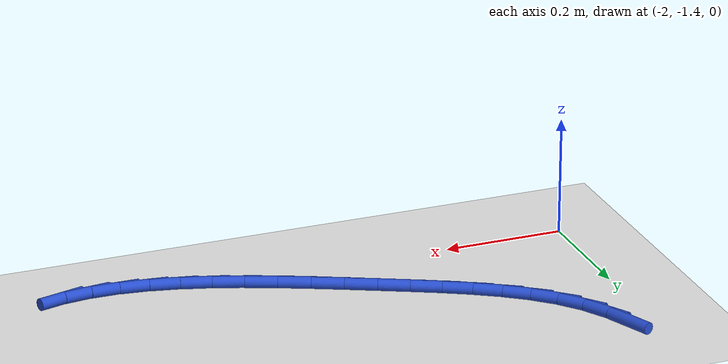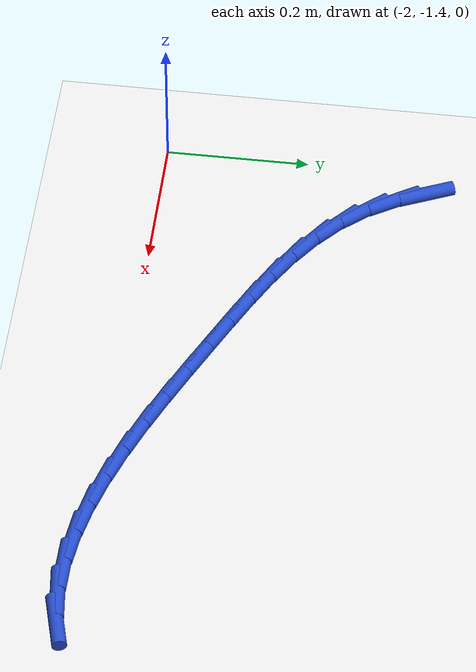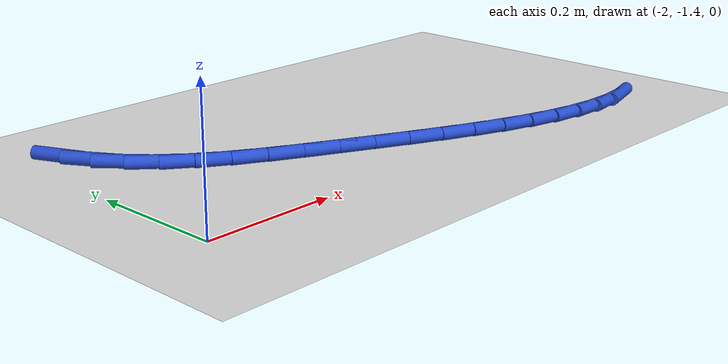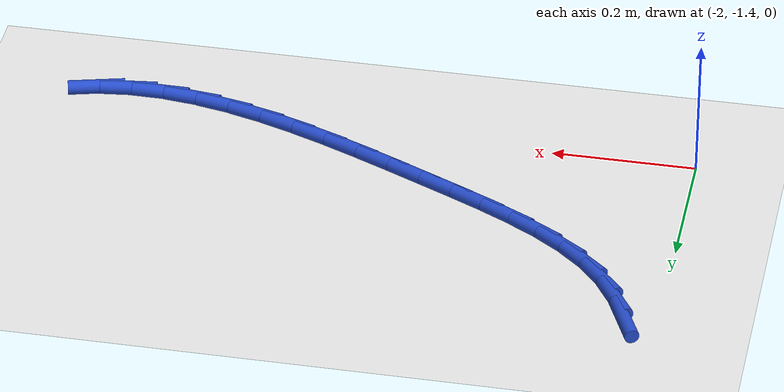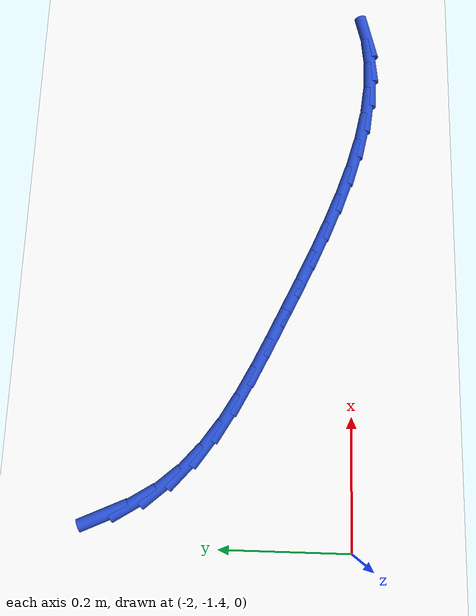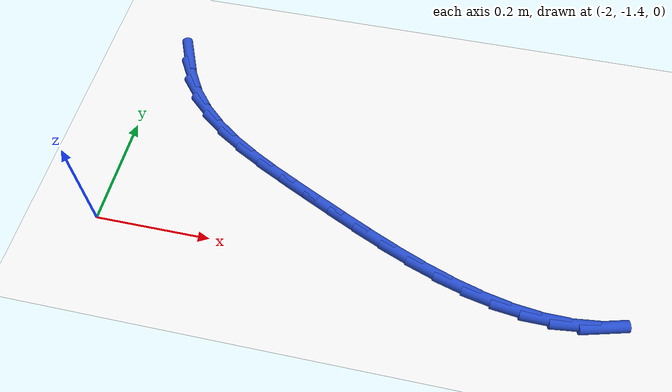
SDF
<sdf version="1.6">
 <world name="default">
  <model name="ground_plane">
   <static>1</static>
   <link name="link">
    <collision name="collision">
     <geometry><plane><normal>0 0 1</normal><size>100 100</size></plane></geometry>
     <surface><friction><ode><mu>100</mu><mu2>50</mu2></ode></friction></surface>
    </collision>
    <visual name="visual">
     <cast_shadows>0</cast_shadows>
     <geometry><plane><normal>0 0 1</normal><size>100 100</size></plane></geometry>
     <material>
      <script><uri>file://media/materials/scripts/gazebo.material</uri><name>Gazebo/WhiteGlow</name></script>
     </material>
    </visual>
   </link>
  </model>
  <model name="line">
   <link name="link_102">
    <pose>-1.9557638340449202 -1.0287976784951947 0.01 0 1.57 -1.1558026947586588</pose>
    <collision name="collision">
     <geometry><cylinder><radius>0.01</radius><length>0.08</length></cylinder></geometry>
    </collision>
    <visual name="visual">
     <material>
      <script><name>Gazebo/Blue</name><uri>file://media/materials/scripts/gazebo.material</uri></script>
     </material>
     <geometry><cylinder><radius>0.01</radius><length>0.08</length></cylinder></geometry>
    </visual>
   </link>
   <link name="link_103">
    <pose>-1.9366530661133583 -1.072173953923524 0.01 0 1.57 -1.0209103823717096</pose>
    <collision name="collision">
     <geometry><cylinder><radius>0.01</radius><length>0.08</length></cylinder></geometry>
    </collision>
    <visual name="visual">
     <material>
      <script><name>Gazebo/Blue</name><uri>file://media/materials/scripts/gazebo.material</uri></script>
     </material>
     <geometry><cylinder><radius>0.01</radius><length>0.08</length></cylinder></geometry>
    </visual>
   </link>
   <link name="link_104">
    <pose>-1.912449661954711 -1.111660814951596 0.01 0 1.57 -0.8653176783605909</pose>
    <collision name="collision">
     <geometry><cylinder><radius>0.01</radius><length>0.08</length></cylinder></geometry>
    </collision>
    <visual name="visual">
     <material>
      <script><name>Gazebo/Blue</name><uri>file://media/materials/scripts/gazebo.material</uri></script>
     </material>
     <geometry><cylinder><radius>0.01</radius><length>0.08</length></cylinder></geometry>
    </visual>
   </link>
   <link name="link_105">
    <pose>-1.882587982568405 -1.146722188311902 0.01 0 1.57 -0.7273699995595424</pose>
    <collision name="collision">
     <geometry><cylinder><radius>0.01</radius><length>0.08</length></cylinder></geometry>
    </collision>
    <visual name="visual">
     <material>
      <script><name>Gazebo/Blue</name><uri>file://media/materials/scripts/gazebo.material</uri></script>
     </material>
     <geometry><cylinder><radius>0.01</radius><length>0.08</length></cylinder></geometry>
    </visual>
   </link>
   <link name="link_106">
    <pose>-1.8476166054818883 -1.1778534400135716 0.01 0 1.57 -0.6191273624081159</pose>
    <collision name="collision">
     <geometry><cylinder><radius>0.01</radius><length>0.08</length></cylinder></geometry>
    </collision>
    <visual name="visual">
     <material>
      <script><name>Gazebo/Blue</name><uri>file://media/materials/scripts/gazebo.material</uri></script>
     </material>
     <geometry><cylinder><radius>0.01</radius><length>0.08</length></cylinder></geometry>
    </visual>
   </link>
   <link name="link_107">
    <pose>-1.808373470537269 -1.2058178011072322 0.01 0 1.57 -0.5396357264796854</pose>
    <collision name="collision">
     <geometry><cylinder><radius>0.01</radius><length>0.08</length></cylinder></geometry>
    </collision>
    <visual name="visual">
     <material>
      <script><name>Gazebo/Blue</name><uri>file://media/materials/scripts/gazebo.material</uri></script>
     </material>
     <geometry><cylinder><radius>0.01</radius><length>0.08</length></cylinder></geometry>
    </visual>
   </link>
   <link name="link_108">
    <pose>-1.7656965181462287 -1.2313785031707736 0.01 0 1.57 -0.4860760220218346</pose>
    <collision name="collision">
     <geometry><cylinder><radius>0.01</radius><length>0.08</length></cylinder></geometry>
    </collision>
    <visual name="visual">
     <material>
      <script><name>Gazebo/Blue</name><uri>file://media/materials/scripts/gazebo.material</uri></script>
     </material>
     <geometry><cylinder><radius>0.01</radius><length>0.08</length></cylinder></geometry>
    </visual>
   </link>
   <link name="link_109">
    <pose>-1.7204236887204538 -1.2552987777820883 0.01 0 1.57 -0.45558141859583634</pose>
    <collision name="collision">
     <geometry><cylinder><radius>0.01</radius><length>0.08</length></cylinder></geometry>
    </collision>
    <visual name="visual">
     <material>
      <script><name>Gazebo/Blue</name><uri>file://media/materials/scripts/gazebo.material</uri></script>
     </material>
     <geometry><cylinder><radius>0.01</radius><length>0.08</length></cylinder></geometry>
    </visual>
   </link>
   <link name="link_110">
    <pose>-1.6733929226716269 -1.278341856519066 0.01 0 1.57 -0.4456036883079118</pose>
    <collision name="collision">
     <geometry><cylinder><radius>0.01</radius><length>0.08</length></cylinder></geometry>
    </collision>
    <visual name="visual">
     <material>
      <script><name>Gazebo/Blue</name><uri>file://media/materials/scripts/gazebo.material</uri></script>
     </material>
     <geometry><cylinder><radius>0.01</radius><length>0.08</length></cylinder></geometry>
    </visual>
   </link>
   <link name="link_111">
    <pose>-1.625431961190247 -1.3012501394882037 0.01 0 1.57 -0.4420978706622319</pose>
    <collision name="collision">
     <geometry><cylinder><radius>0.01</radius><length>0.08</length></cylinder></geometry>
    </collision>
    <visual name="visual">
     <material>
      <script><name>Gazebo/Blue</name><uri>file://media/materials/scripts/gazebo.material</uri></script>
     </material>
     <geometry><cylinder><radius>0.01</radius><length>0.08</length></cylinder></geometry>
    </visual>
   </link>
   <link name="link_112">
    <pose>-1.5770643615683233 -1.3241447442425363 0.01 0 1.57 -0.4300169981267186</pose>
    <collision name="collision">
     <geometry><cylinder><radius>0.01</radius><length>0.08</length></cylinder></geometry>
    </collision>
    <visual name="visual">
     <material>
      <script><name>Gazebo/Blue</name><uri>file://media/materials/scripts/gazebo.material</uri></script>
     </material>
     <geometry><cylinder><radius>0.01</radius><length>0.08</length></cylinder></geometry>
    </visual>
   </link>
   <link name="link_113">
    <pose>-1.528464924387331 -1.3464344677266555 0.01 0 1.57 -0.4082454650091777</pose>
    <collision name="collision">
     <geometry><cylinder><radius>0.01</radius><length>0.08</length></cylinder></geometry>
    </collision>
    <visual name="visual">
     <material>
      <script><name>Gazebo/Blue</name><uri>file://media/materials/scripts/gazebo.material</uri></script>
     </material>
     <geometry><cylinder><radius>0.01</radius><length>0.08</length></cylinder></geometry>
    </visual>
   </link>
   <link name="link_114">
    <pose>-1.479789284159444 -1.3674889610114418 0.01 0 1.57 -0.37607133458980996</pose>
    <collision name="collision">
     <geometry><cylinder><radius>0.01</radius><length>0.08</length></cylinder></geometry>
    </collision>
    <visual name="visual">
     <material>
      <script><name>Gazebo/Blue</name><uri>file://media/materials/scripts/gazebo.material</uri></script>
     </material>
     <geometry><cylinder><radius>0.01</radius><length>0.08</length></cylinder></geometry>
    </visual>
   </link>
   <link name="link_115">
    <pose>-1.431193075396839 -1.3866778751677766 0.01 0 1.57 -0.3323686099343707</pose>
    <collision name="collision">
     <geometry><cylinder><radius>0.01</radius><length>0.08</length></cylinder></geometry>
    </collision>
    <visual name="visual">
     <material>
      <script><name>Gazebo/Blue</name><uri>file://media/materials/scripts/gazebo.material</uri></script>
     </material>
     <geometry><cylinder><radius>0.01</radius><length>0.08</length></cylinder></geometry>
    </visual>
   </link>
   <link name="link_116">
    <pose>-1.3828319326116885 -1.4033708612665396 0.01 0 1.57 -0.27561614476636465</pose>
    <collision name="collision">
     <geometry><cylinder><radius>0.01</radius><length>0.08</length></cylinder></geometry>
    </collision>
    <visual name="visual">
     <material>
      <script><name>Gazebo/Blue</name><uri>file://media/materials/scripts/gazebo.material</uri></script>
     </material>
     <geometry><cylinder><radius>0.01</radius><length>0.08</length></cylinder></geometry>
    </visual>
   </link>
   <link name="link_117">
    <pose>-1.33486149031617 -1.4169375703786107 0.01 0 1.57 -0.2039815603053917</pose>
    <collision name="collision">
     <geometry><cylinder><radius>0.01</radius><length>0.08</length></cylinder></geometry>
    </collision>
    <visual name="visual">
     <material>
      <script><name>Gazebo/Blue</name><uri>file://media/materials/scripts/gazebo.material</uri></script>
     </material>
     <geometry><cylinder><radius>0.01</radius><length>0.08</length></cylinder></geometry>
    </visual>
   </link>
   <link name="link_118">
    <pose>-1.2874373830224568 -1.4267476535748715 0.01 0 1.57 -0.1155544065780477</pose>
    <collision name="collision">
     <geometry><cylinder><radius>0.01</radius><length>0.08</length></cylinder></geometry>
    </collision>
    <visual name="visual">
     <material>
      <script><name>Gazebo/Blue</name><uri>file://media/materials/scripts/gazebo.material</uri></script>
     </material>
     <geometry><cylinder><radius>0.01</radius><length>0.08</length></cylinder></geometry>
    </visual>
   </link>
   <link name="link_119">
    <pose>-1.2407152452427246 -1.4321707619262019 0.01 0 1.57 -0.008847228056865879</pose>
    <collision name="collision">
     <geometry><cylinder><radius>0.01</radius><length>0.08</length></cylinder></geometry>
    </collision>
    <visual name="visual">
     <material>
      <script><name>Gazebo/Blue</name><uri>file://media/materials/scripts/gazebo.material</uri></script>
     </material>
     <geometry><cylinder><radius>0.01</radius><length>0.08</length></cylinder></geometry>
    </visual>
   </link>
   <link name="link_120">
    <pose>-1.1948507114891478 -1.4325765465034823 0.01 0 1.57 0.11634480414570125</pose>
    <collision name="collision">
     <geometry><cylinder><radius>0.01</radius><length>0.08</length></cylinder></geometry>
    </collision>
    <visual name="visual">
     <material>
      <script><name>Gazebo/Blue</name><uri>file://media/materials/scripts/gazebo.material</uri></script>
     </material>
     <geometry><cylinder><radius>0.01</radius><length>0.08</length></cylinder></geometry>
    </visual>
   </link>
   <link name="link_121">
    <pose>-1.1499994162739005 -1.427334658377593 0.01 0 1.57 0.2571088767921165</pose>
    <collision name="collision">
     <geometry><cylinder><radius>0.01</radius><length>0.08</length></cylinder></geometry>
    </collision>
    <visual name="visual">
     <material>
      <script><name>Gazebo/Blue</name><uri>file://media/materials/scripts/gazebo.material</uri></script>
     </material>
     <geometry><cylinder><radius>0.01</radius><length>0.08</length></cylinder></geometry>
    </visual>
   </link>
  </model>
 </world>
</sdf>
